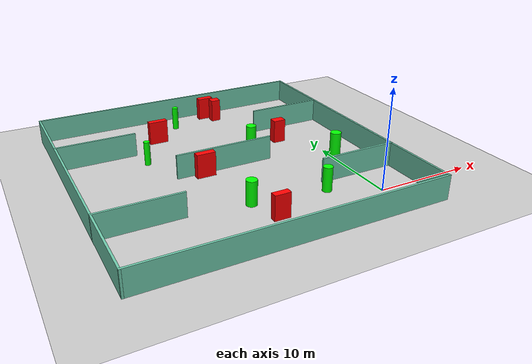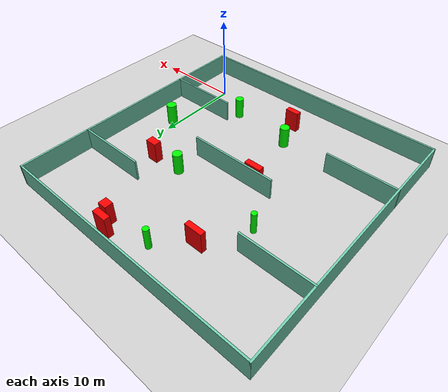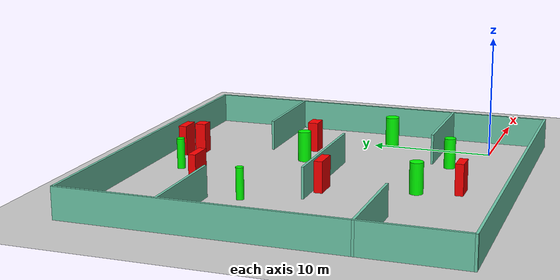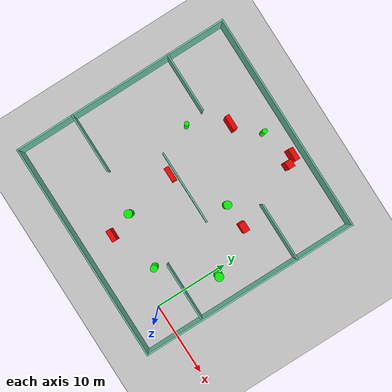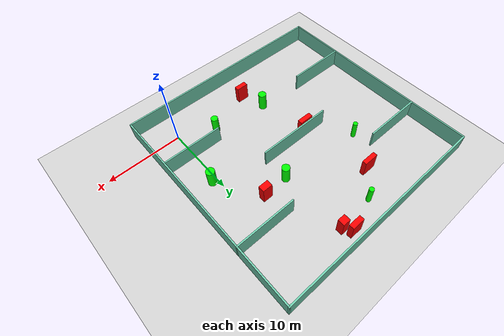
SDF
<sdf version="1.7">
 <world name="default">
  <light name="sun" type="directional">
   <pose>0 0 10 0 -0 0</pose>
   <diffuse>0.8 0.8 0.8 1</diffuse>
   <specular>0.2 0.2 0.2 1</specular>
   <attenuation>
    <range>1000</range>
    <constant>0.9</constant>
    <linear>0.01</linear>
    <quadratic>0.001</quadratic>
   </attenuation>
   <direction>-0.5 0.1 -0.9</direction>
   <spot><inner_angle>0</inner_angle><outer_angle>0</outer_angle><falloff>0</falloff></spot>
  </light>
  <model name="ground_plane">
   <static>1</static>
   <link name="link">
    <collision name="collision">
     <geometry><plane><normal>0 0 1</normal><size>100 100</size></plane></geometry>
     <surface>
      <contact><collide_bitmask>65535</collide_bitmask></contact>
      <friction><ode><mu>100</mu><mu2>50</mu2></ode></friction>
     </surface>
    </collision>
    <visual name="visual">
     <cast_shadows>0</cast_shadows>
     <geometry><plane><normal>0 0 1</normal><size>100 100</size></plane></geometry>
     <material>
      <script><uri>file://media/materials/scripts/gazebo.material</uri><name>Gazebo/Grey</name></script>
     </material>
    </visual>
   </link>
  </model>
  <gravity>0 0 -9.8</gravity>
  <magnetic_field>6e-06 2.3e-05 -4.2e-05</magnetic_field>
  <atmosphere type="adiabatic"/>
  <physics type="ode">
   <max_step_size>0.001</max_step_size>
   <real_time_factor>1</real_time_factor>
   <real_time_update_rate>1000</real_time_update_rate>
  </physics>
  <scene><ambient>0.4 0.4 0.4 1</ambient><background>0.7 0.7 0.7 1</background><shadows>1</shadows></scene>
  <spherical_coordinates>
   <surface_model>EARTH_WGS84</surface_model>
   <latitude_deg>0</latitude_deg>
   <longitude_deg>0</longitude_deg>
   <elevation>0</elevation>
   <heading_deg>0</heading_deg>
  </spherical_coordinates>
  <model name="my_base_walls">
   <link name="Wall_10">
    <collision name="Wall_10_Collision">
     <geometry><box><size>8.2 0.2 2.5</size></box></geometry>
     <pose>0 0 1.25 0 -0 0</pose>
    </collision>
    <visual name="Wall_10_Visual">
     <pose>0 0 1.25 0 -0 0</pose>
     <geometry><box><size>8.2 0.2 2.5</size></box></geometry>
     <material>
      <script><uri>file://media/materials/scripts/gazebo.material</uri><name>Gazebo/Grey</name></script>
      <ambient>0.435294 0.796078 0.67451 1</ambient>
     </material>
     <meta><layer>0</layer></meta>
    </visual>
    <pose>-11 -7 0 0 -0 0</pose>
   </link>
   <link name="Wall_12">
    <collision name="Wall_12_Collision">
     <geometry><box><size>8.2 0.2 2.5</size></box></geometry>
     <pose>0 0 1.25 0 -0 0</pose>
    </collision>
    <visual name="Wall_12_Visual">
     <pose>0 0 1.25 0 -0 0</pose>
     <geometry><box><size>8.2 0.2 2.5</size></box></geometry>
     <material>
      <script><uri>file://media/materials/scripts/gazebo.material</uri><name>Gazebo/Grey</name></script>
      <ambient>0.435294 0.796078 0.67451 1</ambient>
     </material>
     <meta><layer>0</layer></meta>
    </visual>
    <pose>-11 7 0 0 -0 0</pose>
   </link>
   <link name="Wall_14">
    <collision name="Wall_14_Collision">
     <geometry><box><size>8.2 0.2 2.5</size></box></geometry>
     <pose>0 0 1.25 0 -0 0</pose>
    </collision>
    <visual name="Wall_14_Visual">
     <pose>0 0 1.25 0 -0 0</pose>
     <geometry><box><size>8.2 0.2 2.5</size></box></geometry>
     <material>
      <script><uri>file://media/materials/scripts/gazebo.material</uri><name>Gazebo/Grey</name></script>
      <ambient>0.435294 0.796078 0.67451 1</ambient>
     </material>
     <meta><layer>0</layer></meta>
    </visual>
    <pose>11 7 0 0 -0 3.14159</pose>
   </link>
   <link name="Wall_16">
    <collision name="Wall_16_Collision">
     <geometry><box><size>10.2 0.2 2.5</size></box></geometry>
     <pose>0 0 1.25 0 -0 0</pose>
    </collision>
    <visual name="Wall_16_Visual">
     <pose>0 0 1.25 0 -0 0</pose>
     <geometry><box><size>10.2 0.2 2.5</size></box></geometry>
     <material>
      <script><uri>file://media/materials/scripts/gazebo.material</uri><name>Gazebo/Grey</name></script>
      <ambient>0.435294 0.796078 0.67451 1</ambient>
     </material>
     <meta><layer>0</layer></meta>
    </visual>
    <pose>0 0 0 0 -0 3.14159</pose>
   </link>
   <link name="Wall_2">
    <collision name="Wall_2_Collision">
     <geometry><box><size>30.2 0.2 2.5</size></box></geometry>
     <pose>0 0 1.25 0 -0 0</pose>
    </collision>
    <visual name="Wall_2_Visual">
     <pose>0 0 1.25 0 -0 0</pose>
     <geometry><box><size>30.2 0.2 2.5</size></box></geometry>
     <material>
      <script><uri>file://media/materials/scripts/gazebo.material</uri><name>Gazebo/Grey</name></script>
      <ambient>0.435294 0.796078 0.67451 1</ambient>
     </material>
     <meta><layer>0</layer></meta>
    </visual>
    <pose>0 -15 0 0 -0 3.14159</pose>
   </link>
   <link name="Wall_3">
    <collision name="Wall_3_Collision">
     <geometry><box><size>30.2 0.2 2.5</size></box></geometry>
     <pose>0 0 1.25 0 -0 0</pose>
    </collision>
    <visual name="Wall_3_Visual">
     <pose>0 0 1.25 0 -0 0</pose>
     <geometry><box><size>30.2 0.2 2.5</size></box></geometry>
     <material>
      <script><uri>file://media/materials/scripts/gazebo.material</uri><name>Gazebo/Grey</name></script>
      <ambient>0.435294 0.796078 0.67451 1</ambient>
     </material>
     <meta><layer>0</layer></meta>
    </visual>
    <pose>-15 0 0 0 -0 1.5708</pose>
   </link>
   <link name="Wall_4">
    <collision name="Wall_4_Collision">
     <geometry><box><size>30.2 0.2 2.5</size></box></geometry>
     <pose>0 0 1.25 0 -0 0</pose>
    </collision>
    <visual name="Wall_4_Visual">
     <pose>0 0 1.25 0 -0 0</pose>
     <geometry><box><size>30.2 0.2 2.5</size></box></geometry>
     <material>
      <script><uri>file://media/materials/scripts/gazebo.material</uri><name>Gazebo/Grey</name></script>
      <ambient>0.435294 0.796078 0.67451 1</ambient>
     </material>
     <meta><layer>0</layer></meta>
    </visual>
    <pose>0 15 0 0 -0 0</pose>
   </link>
   <link name="Wall_6">
    <collision name="Wall_6_Collision">
     <geometry><box><size>30.2 0.2 2.5</size></box></geometry>
     <pose>0 0 1.25 0 -0 0</pose>
    </collision>
    <visual name="Wall_6_Visual">
     <pose>0 0 1.25 0 -0 0</pose>
     <geometry><box><size>30.2 0.2 2.5</size></box></geometry>
     <material>
      <script><uri>file://media/materials/scripts/gazebo.material</uri><name>Gazebo/Grey</name></script>
      <ambient>0.435294 0.796078 0.67451 1</ambient>
     </material>
     <meta><layer>0</layer></meta>
    </visual>
    <pose>15 0 0 0 -0 1.5708</pose>
   </link>
   <link name="Wall_8">
    <collision name="Wall_8_Collision">
     <geometry><box><size>8.2 0.2 2.5</size></box></geometry>
     <pose>0 0 1.25 0 -0 0</pose>
    </collision>
    <visual name="Wall_8_Visual">
     <pose>0 0 1.25 0 -0 0</pose>
     <geometry><box><size>8.2 0.2 2.5</size></box></geometry>
     <material>
      <script><uri>file://media/materials/scripts/gazebo.material</uri><name>Gazebo/Grey</name></script>
      <ambient>0.435294 0.796078 0.67451 1</ambient>
     </material>
     <meta><layer>0</layer></meta>
    </visual>
    <pose>11 -7 0 0 -0 3.14159</pose>
   </link>
   <static>1</static>
   <pose>-11 11 0 0 -0 0</pose>
  </model>
  <model name="cylinder1">
   <static>1</static>
   <link name="link">
    <inertial>
     <mass>1</mass>
     <inertia><ixx>0.5</ixx><ixy>0</ixy><ixz>0</ixz><iyy>0.5</iyy><iyz>0</iyz><izz>1</izz></inertia>
    </inertial>
    <collision name="collision">
     <geometry><cylinder><radius>0.5702465154971141</radius><length>2.5</length></cylinder></geometry>
    </collision>
    <visual name="visual">
     <geometry><cylinder><radius>0.5702465154971141</radius><length>2.5</length></cylinder></geometry>
     <material>
      <ambient>0 1 0 1</ambient>
      <diffuse>0 1 0 1</diffuse>
      <specular>0.1 0.1 0.1 1</specular>
      <emissive>0 0 0 0</emissive>
     </material>
    </visual>
   </link>
   <pose>0.6214859985239372 8.652366164398984 1.25 0 0 0</pose>
  </model>
  <model name="cylinder2">
   <static>1</static>
   <link name="link">
    <inertial>
     <mass>1</mass>
     <inertia><ixx>0.5</ixx><ixy>0</ixy><ixz>0</ixz><iyy>0.5</iyy><iyz>0</iyz><izz>1</izz></inertia>
    </inertial>
    <collision name="collision">
     <geometry><cylinder><radius>0.5336230677166698</radius><length>2.5</length></cylinder></geometry>
    </collision>
    <visual name="visual">
     <geometry><cylinder><radius>0.5336230677166698</radius><length>2.5</length></cylinder></geometry>
     <material>
      <ambient>0 1 0 1</ambient>
      <diffuse>0 1 0 1</diffuse>
      <specular>0.1 0.1 0.1 1</specular>
      <emissive>0 0 0 0</emissive>
     </material>
    </visual>
   </link>
   <pose>-6.330735891130082 14.306541398497746 1.25 0 0 0</pose>
  </model>
  <model name="cylinder3">
   <static>1</static>
   <link name="link">
    <inertial>
     <mass>1</mass>
     <inertia><ixx>0.5</ixx><ixy>0</ixy><ixz>0</ixz><iyy>0.5</iyy><iyz>0</iyz><izz>1</izz></inertia>
    </inertial>
    <collision name="collision">
     <geometry><cylinder><radius>0.46699190763932175</radius><length>2.5</length></cylinder></geometry>
    </collision>
    <visual name="visual">
     <geometry><cylinder><radius>0.46699190763932175</radius><length>2.5</length></cylinder></geometry>
     <material>
      <ambient>0 1 0 1</ambient>
      <diffuse>0 1 0 1</diffuse>
      <specular>0.1 0.1 0.1 1</specular>
      <emissive>0 0 0 0</emissive>
     </material>
    </visual>
   </link>
   <pose>-4.6024919337844175 2.3978994924997608 1.25 0 0 0</pose>
  </model>
  <model name="cylinder4">
   <static>1</static>
   <link name="link">
    <inertial>
     <mass>1</mass>
     <inertia><ixx>0.5</ixx><ixy>0</ixy><ixz>0</ixz><iyy>0.5</iyy><iyz>0</iyz><izz>1</izz></inertia>
    </inertial>
    <collision name="collision">
     <geometry><cylinder><radius>0.32375894456440285</radius><length>2.5</length></cylinder></geometry>
    </collision>
    <visual name="visual">
     <geometry><cylinder><radius>0.32375894456440285</radius><length>2.5</length></cylinder></geometry>
     <material>
      <ambient>0 1 0 1</ambient>
      <diffuse>0 1 0 1</diffuse>
      <specular>0.1 0.1 0.1 1</specular>
      <emissive>0 0 0 0</emissive>
     </material>
    </visual>
   </link>
   <pose>-11.594615956109717 23.077015495057513 1.25 0 0 0</pose>
  </model>
  <model name="cylinder5">
   <static>1</static>
   <link name="link">
    <inertial>
     <mass>1</mass>
     <inertia><ixx>0.5</ixx><ixy>0</ixy><ixz>0</ixz><iyy>0.5</iyy><iyz>0</iyz><izz>1</izz></inertia>
    </inertial>
    <collision name="collision">
     <geometry><cylinder><radius>0.5416018680115335</radius><length>2.5</length></cylinder></geometry>
    </collision>
    <visual name="visual">
     <geometry><cylinder><radius>0.5416018680115335</radius><length>2.5</length></cylinder></geometry>
     <material>
      <ambient>0 1 0 1</ambient>
      <diffuse>0 1 0 1</diffuse>
      <specular>0.1 0.1 0.1 1</specular>
      <emissive>0 0 0 0</emissive>
     </material>
    </visual>
   </link>
   <pose>-12.022506158997942 3.32657722423823 1.25 0 0 0</pose>
  </model>
  <model name="cylinder6">
   <static>1</static>
   <link name="link">
    <inertial>
     <mass>1</mass>
     <inertia><ixx>0.5</ixx><ixy>0</ixy><ixz>0</ixz><iyy>0.5</iyy><iyz>0</iyz><izz>1</izz></inertia>
    </inertial>
    <collision name="collision">
     <geometry><cylinder><radius>0.3071825678466628</radius><length>2.5</length></cylinder></geometry>
    </collision>
    <visual name="visual">
     <geometry><cylinder><radius>0.3071825678466628</radius><length>2.5</length></cylinder></geometry>
     <material>
      <ambient>0 1 0 1</ambient>
      <diffuse>0 1 0 1</diffuse>
      <specular>0.1 0.1 0.1 1</specular>
      <emissive>0 0 0 0</emissive>
     </material>
    </visual>
   </link>
   <pose>-17.55445713287288 15.397169620844611 1.25 0 0 0</pose>
  </model>
  <model name="box1">
   <static>1</static>
   <link name="link">
    <inertial>
     <mass>1</mass>
     <inertia><ixx>0.083</ixx><ixy>0</ixy><ixz>0</ixz><iyy>0.083</iyy><iyz>0</iyz><izz>0.083</izz></inertia>
    </inertial>
    <collision name="collision">
     <geometry><box><size>2.0108971500217256 0.6038593194922831 2.5</size></box></geometry>
    </collision>
    <visual name="visual">
     <geometry><box><size>2.0108971500217256 0.6038593194922831 2.5</size></box></geometry>
     <material>
      <ambient>1 0 0 1</ambient>
      <diffuse>1 0 0 1</diffuse>
      <specular>0.1 0.1 0.1 1</specular>
      <emissive>0 0 0 0</emissive>
     </material>
    </visual>
    <sensor name="my_contact" type="contact">
     <contact><collision>box_collision</collision><topic>__default_topic__</topic></contact>
    </sensor>
   </link>
   <pose>-14.744657288636507 20.15314011415895 1.25 0 0 0</pose>
  </model>
  <model name="box2">
   <static>1</static>
   <link name="link">
    <inertial>
     <mass>1</mass>
     <inertia><ixx>0.083</ixx><ixy>0</ixy><ixz>0</ixz><iyy>0.083</iyy><iyz>0</iyz><izz>0.083</izz></inertia>
    </inertial>
    <collision name="collision">
     <geometry><box><size>1.95675719057584 0.6711615566983826 2.5</size></box></geometry>
    </collision>
    <visual name="visual">
     <geometry><box><size>1.95675719057584 0.6711615566983826 2.5</size></box></geometry>
     <material>
      <ambient>1 0 0 1</ambient>
      <diffuse>1 0 0 1</diffuse>
      <specular>0.1 0.1 0.1 1</specular>
      <emissive>0 0 0 0</emissive>
     </material>
    </visual>
    <sensor name="my_contact" type="contact">
     <contact><collision>box_collision</collision><topic>__default_topic__</topic></contact>
    </sensor>
   </link>
   <pose>-13.386529977226928 10.367432286880579 1.25 0 0 0</pose>
  </model>
  <model name="box3">
   <static>1</static>
   <link name="link">
    <inertial>
     <mass>1</mass>
     <inertia><ixx>0.083</ixx><ixy>0</ixy><ixz>0</ixz><iyy>0.083</iyy><iyz>0</iyz><izz>0.083</izz></inertia>
    </inertial>
    <collision name="collision">
     <geometry><box><size>1.59462656698382 0.6616672591994687 2.5</size></box></geometry>
    </collision>
    <visual name="visual">
     <geometry><box><size>1.59462656698382 0.6616672591994687 2.5</size></box></geometry>
     <material>
      <ambient>1 0 0 1</ambient>
      <diffuse>1 0 0 1</diffuse>
      <specular>0.1 0.1 0.1 1</specular>
      <emissive>0 0 0 0</emissive>
     </material>
    </visual>
    <sensor name="my_contact" type="contact">
     <contact><collision>box_collision</collision><topic>__default_topic__</topic></contact>
    </sensor>
   </link>
   <pose>-10.872608683858584 0.12692967329955174 1.25 0 0 0</pose>
  </model>
  <model name="box4">
   <static>1</static>
   <link name="link">
    <inertial>
     <mass>1</mass>
     <inertia><ixx>0.083</ixx><ixy>0</ixy><ixz>0</ixz><iyy>0.083</iyy><iyz>0</iyz><izz>0.083</izz></inertia>
    </inertial>
    <collision name="collision">
     <geometry><box><size>1.7158644513430081 0.6677876195517385 2.5</size></box></geometry>
    </collision>
    <visual name="visual">
     <geometry><box><size>1.7158644513430081 0.6677876195517385 2.5</size></box></geometry>
     <material>
      <ambient>1 0 0 1</ambient>
      <diffuse>1 0 0 1</diffuse>
      <specular>0.1 0.1 0.1 1</specular>
      <emissive>0 0 0 0</emissive>
     </material>
    </visual>
    <sensor name="my_contact" type="contact">
     <contact><collision>box_collision</collision><topic>__default_topic__</topic></contact>
    </sensor>
   </link>
   <pose>-7.264213905143697 24.603203301155528 1.25 0 0 0</pose>
  </model>
  <model name="box5">
   <static>1</static>
   <link name="link">
    <inertial>
     <mass>1</mass>
     <inertia><ixx>0.083</ixx><ixy>0</ixy><ixz>0</ixz><iyy>0.083</iyy><iyz>0</iyz><izz>0.083</izz></inertia>
    </inertial>
    <collision name="collision">
     <geometry><box><size>1.3236190837762631 0.8777301042659784 2.5</size></box></geometry>
    </collision>
    <visual name="visual">
     <geometry><box><size>1.3236190837762631 0.8777301042659784 2.5</size></box></geometry>
     <material>
      <ambient>1 0 0 1</ambient>
      <diffuse>1 0 0 1</diffuse>
      <specular>0.1 0.1 0.1 1</specular>
      <emissive>0 0 0 0</emissive>
     </material>
    </visual>
    <sensor name="my_contact" type="contact">
     <contact><collision>box_collision</collision><topic>__default_topic__</topic></contact>
    </sensor>
   </link>
   <pose>-2.919608482422241 14.546946973707126 1.25 0 0 0</pose>
  </model>
  <model name="box6">
   <static>1</static>
   <link name="link">
    <inertial>
     <mass>1</mass>
     <inertia><ixx>0.083</ixx><ixy>0</ixy><ixz>0</ixz><iyy>0.083</iyy><iyz>0</iyz><izz>0.083</izz></inertia>
    </inertial>
    <collision name="collision">
     <geometry><box><size>1.0308192552052289 0.9056393915818209 2.5</size></box></geometry>
    </collision>
    <visual name="visual">
     <geometry><box><size>1.0308192552052289 0.9056393915818209 2.5</size></box></geometry>
     <material>
      <ambient>1 0 0 1</ambient>
      <diffuse>1 0 0 1</diffuse>
      <specular>0.1 0.1 0.1 1</specular>
      <emissive>0 0 0 0</emissive>
     </material>
    </visual>
    <sensor name="my_contact" type="contact">
     <contact><collision>box_collision</collision><topic>__default_topic__</topic></contact>
    </sensor>
   </link>
   <pose>-6.457887898381831 23.50421506405254 1.25 0 0 0</pose>
  </model>
 </world>
</sdf>
